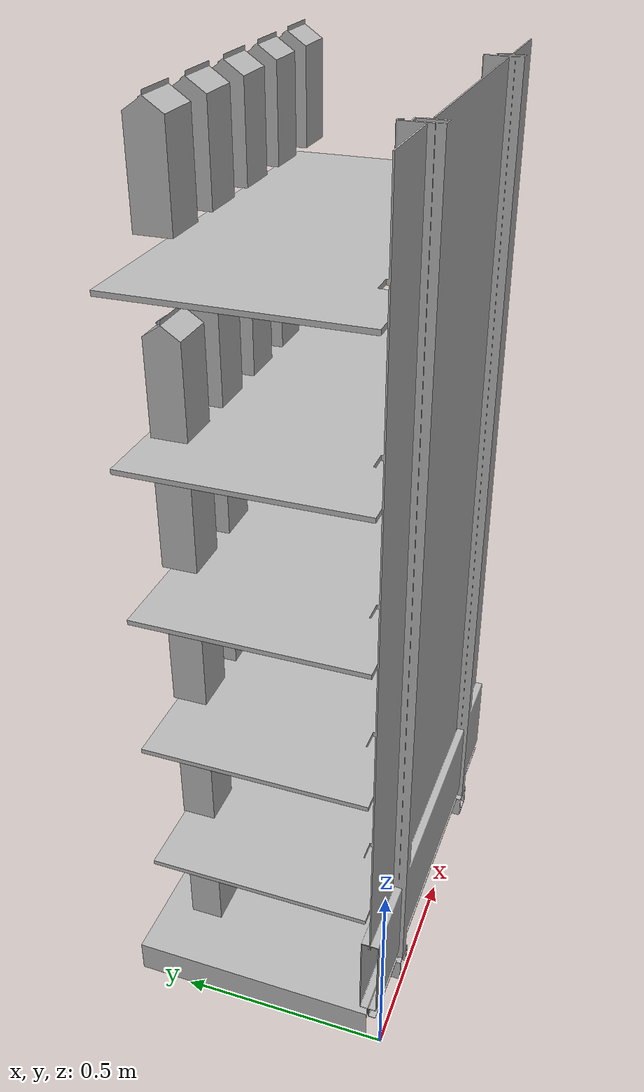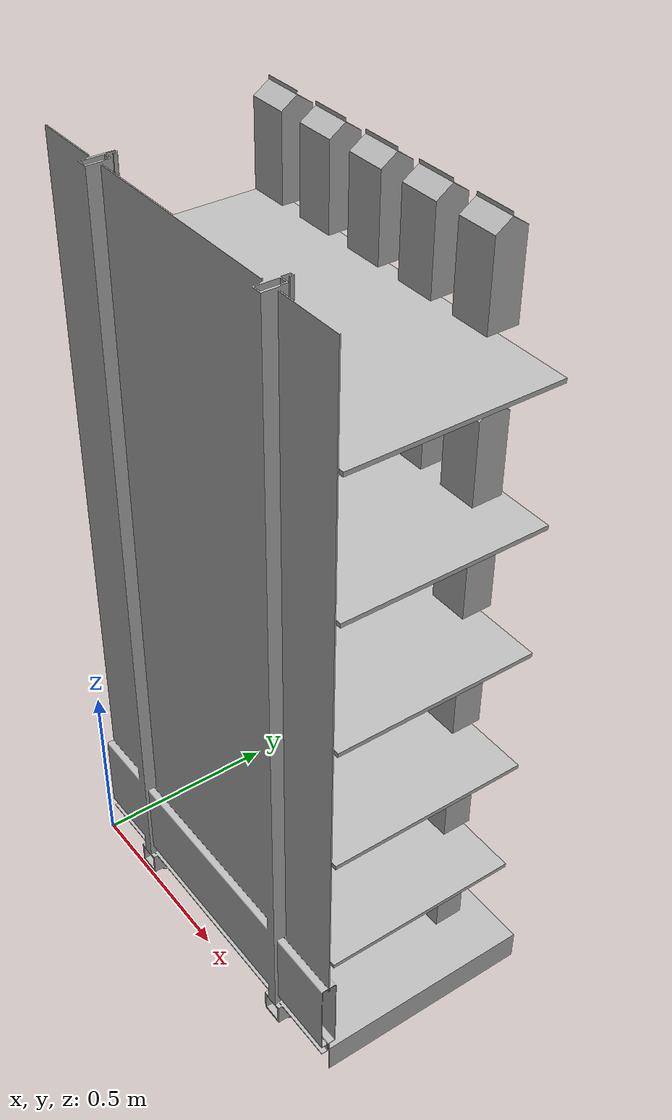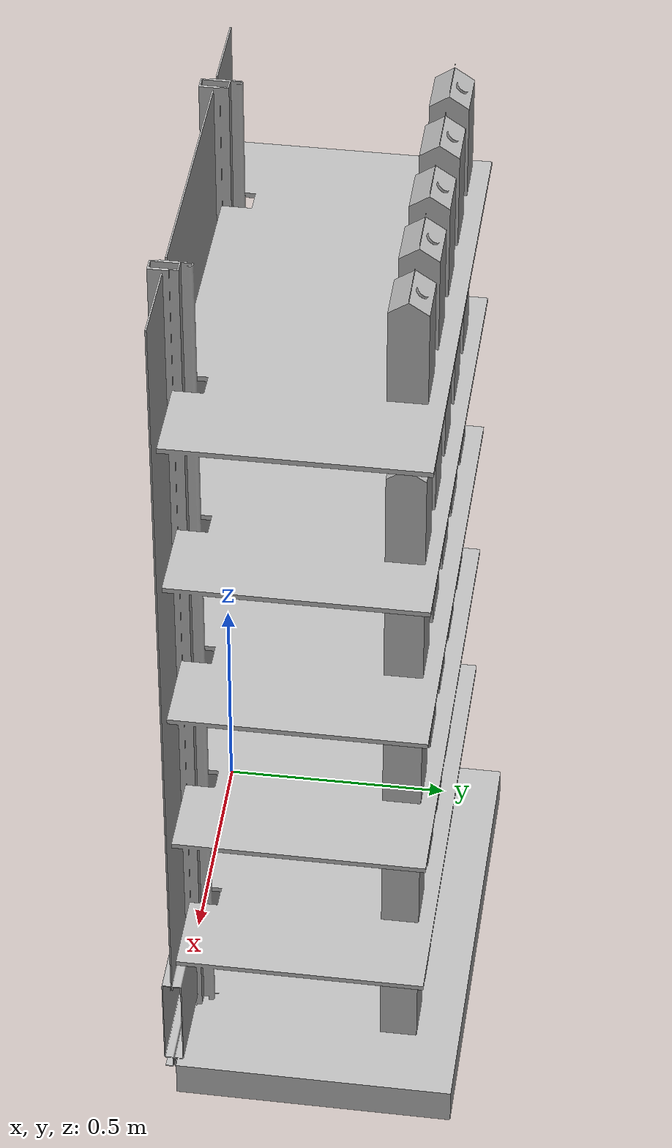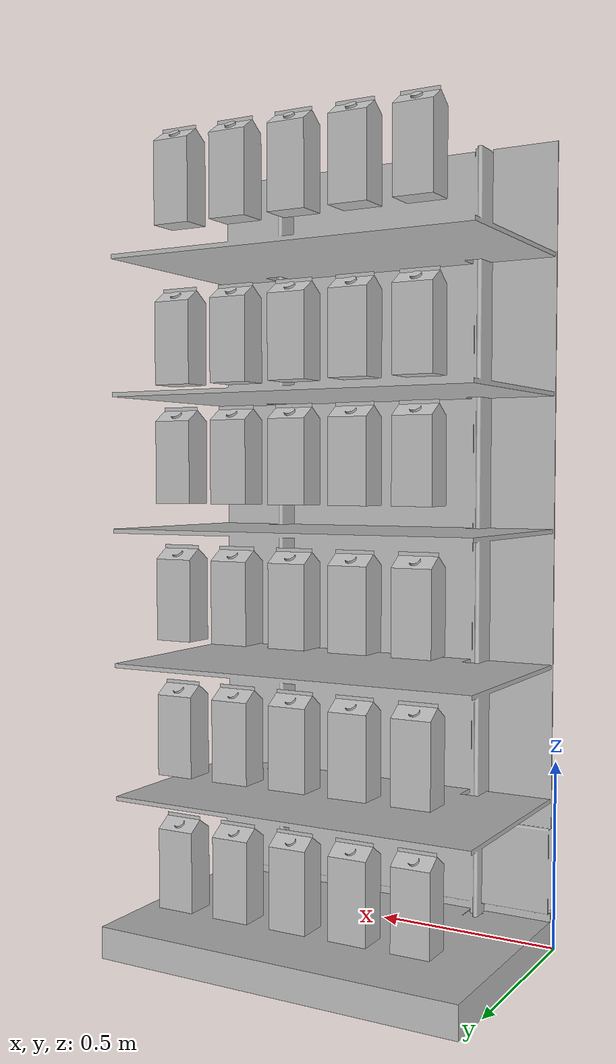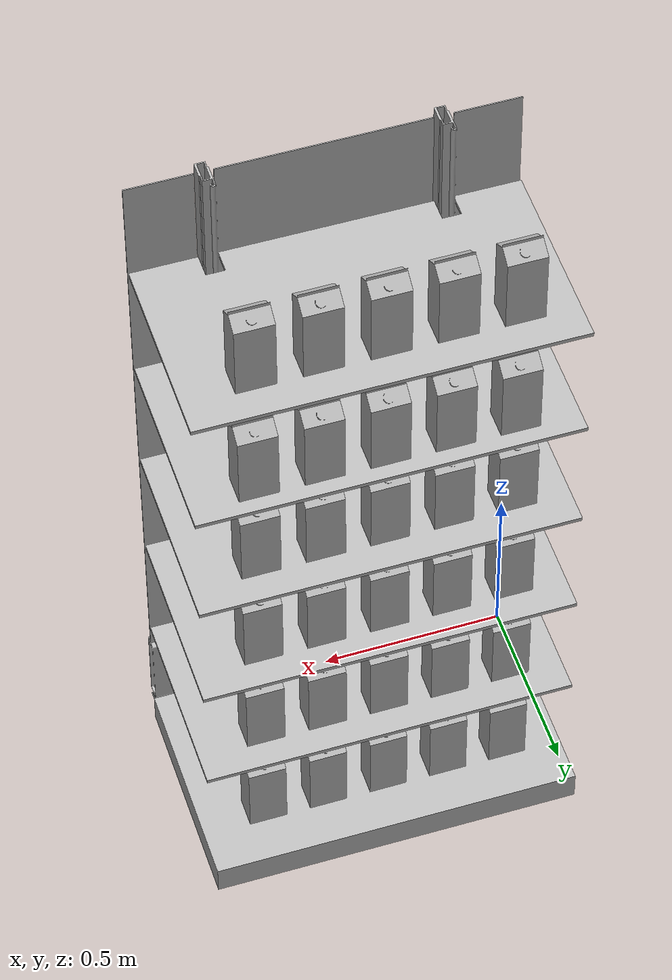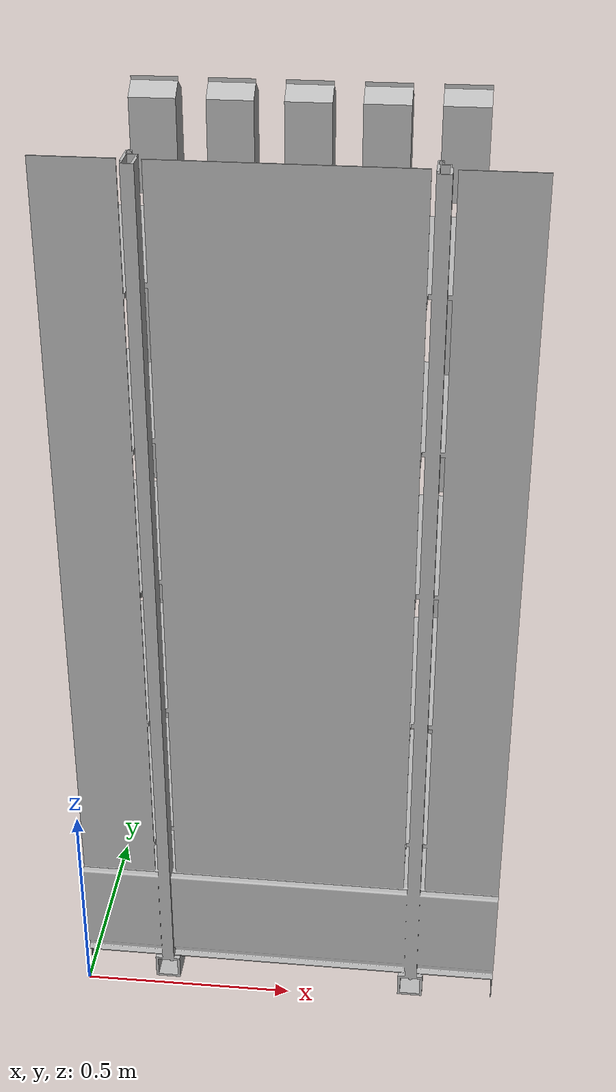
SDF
<?xml version="1.0"?>
<sdf version='1.6'>
  <model name="AH_shelf_filled_melk">
    <static>1</static>
    <link name='link'>
      <inertial>
        <mass>1</mass>
        <inertia>
          <ixx>1</ixx>
          <ixy>0</ixy>
          <ixz>0</ixz>
          <iyy>1</iyy>
          <iyz>0</iyz>
          <izz>1</izz>
        </inertia>
      </inertial>
      <pose frame=''>-0 0 0 0 0 0</pose>

      <visual name='visual'>
        <pose frame=''>0 0 0 0 0 0</pose>
        <geometry>
          <mesh>
            <uri>model://AH_shelf/AH_shelf.dae</uri>
            <scale>1 1 1</scale>
          </mesh>
        </geometry>
        <transparency>0</transparency>
        <cast_shadows>1</cast_shadows>
      </visual>

      <collision name='collision'>
        <laser_retro>0</laser_retro>
        <max_contacts>10</max_contacts>
        <pose frame=''>0 0 0 0 -0 0</pose>
        <geometry>
          <mesh>
            <uri>model://AH_shelf/AH_shelf.dae</uri>
            <scale>1 1 1</scale>
          </mesh>
        </geometry>
        <surface>
          <friction>
            <ode>
              <mu>1</mu>
              <mu2>1</mu2>
              <fdir1>0 0 0</fdir1>
              <slip1>0</slip1>
              <slip2>0</slip2>
            </ode>
            <torsional>
              <coefficient>1</coefficient>
              <patch_radius>0</patch_radius>
              <surface_radius>0</surface_radius>
              <use_patch_radius>1</use_patch_radius>
              <ode>
                <slip>0</slip>
              </ode>
            </torsional>
          </friction>
          <bounce>
            <restitution_coefficient>0</restitution_coefficient>
            <threshold>1e+06</threshold>
          </bounce>
          <contact>
            <collide_without_contact>0</collide_without_contact>
            <collide_without_contact_bitmask>1</collide_without_contact_bitmask>
            <collide_bitmask>1</collide_bitmask>
            <ode>
              <soft_cfm>0</soft_cfm>
              <soft_erp>0.2</soft_erp>
              <kp>1e+13</kp>
              <kd>1</kd>
              <max_vel>0.01</max_vel>
              <min_depth>0</min_depth>
            </ode>
            <bullet>
              <split_impulse>1</split_impulse>
              <split_impulse_penetration_threshold>-0.01</split_impulse_penetration_threshold>
              <soft_cfm>0</soft_cfm>
              <soft_erp>0.2</soft_erp>
              <kp>1e+13</kp>
              <kd>1</kd>
            </bullet>
          </contact>
        </surface>
      </collision>
    </link>

    <model name="board0">
      <pose>0 0.5 2.0 0 0 0</pose>

      <include>
        <uri>model://AH_melk_tag36_11_00200</uri>
        <pose>0.16666666666666666 0 0 0 0 1.57</pose>
      </include>

      <include>
        <uri>model://AH_melk_tag36_11_00201</uri>
        <pose>0.3333333333333333 0 0 0 0 1.57</pose>
      </include>

      <include>
        <uri>model://AH_melk_tag36_11_00202</uri>
        <pose>0.5 0 0 0 0 1.57</pose>
      </include>

      <include>
        <uri>model://AH_melk_tag36_11_00203</uri>
        <pose>0.6666666666666666 0 0 0 0 1.57</pose>
      </include>

      <include>
        <uri>model://AH_melk_tag36_11_00204</uri>
        <pose>0.8333333333333333 0 0 0 0 1.57</pose>
      </include>

    </model>

    <model name="board1">
      <pose>0 0.5 1.6 0 0 0</pose>

      <include>
        <uri>model://AH_melk_tag36_11_00205</uri>
        <pose>0.16666666666666666 0 0 0 0 1.57</pose>
      </include>

      <include>
        <uri>model://AH_melk_tag36_11_00206</uri>
        <pose>0.3333333333333333 0 0 0 0 1.57</pose>
      </include>

      <include>
        <uri>model://AH_melk_tag36_11_00207</uri>
        <pose>0.5 0 0 0 0 1.57</pose>
      </include>

      <include>
        <uri>model://AH_melk_tag36_11_00208</uri>
        <pose>0.6666666666666666 0 0 0 0 1.57</pose>
      </include>

      <include>
        <uri>model://AH_melk_tag36_11_00209</uri>
        <pose>0.8333333333333333 0 0 0 0 1.57</pose>
      </include>

    </model>

    <model name="board2">
      <pose>0 0.5 1.3 0 0 0</pose>

      <include>
        <uri>model://AH_melk_tag36_11_00210</uri>
        <pose>0.16666666666666666 0 0 0 0 1.57</pose>
      </include>

      <include>
        <uri>model://AH_melk_tag36_11_00211</uri>
        <pose>0.3333333333333333 0 0 0 0 1.57</pose>
      </include>

      <include>
        <uri>model://AH_melk_tag36_11_00212</uri>
        <pose>0.5 0 0 0 0 1.57</pose>
      </include>

      <include>
        <uri>model://AH_melk_tag36_11_00213</uri>
        <pose>0.6666666666666666 0 0 0 0 1.57</pose>
      </include>

      <include>
        <uri>model://AH_melk_tag36_11_00214</uri>
        <pose>0.8333333333333333 0 0 0 0 1.57</pose>
      </include>

    </model>

    <model name="board3">
      <pose>0 0.5 0.95 0 0 0</pose>

      <include>
        <uri>model://AH_melk_tag36_11_00215</uri>
        <pose>0.16666666666666666 0 0 0 0 1.57</pose>
      </include>

      <include>
        <uri>model://AH_melk_tag36_11_00216</uri>
        <pose>0.3333333333333333 0 0 0 0 1.57</pose>
      </include>

      <include>
        <uri>model://AH_melk_tag36_11_00217</uri>
        <pose>0.5 0 0 0 0 1.57</pose>
      </include>

      <include>
        <uri>model://AH_melk_tag36_11_00218</uri>
        <pose>0.6666666666666666 0 0 0 0 1.57</pose>
      </include>

      <include>
        <uri>model://AH_melk_tag36_11_00219</uri>
        <pose>0.8333333333333333 0 0 0 0 1.57</pose>
      </include>

    </model>

    <model name="board4">
      <pose>0 0.5 0.60 0 0 0</pose>

      <include>
        <uri>model://AH_melk_tag36_11_00220</uri>
        <pose>0.16666666666666666 0 0 0 0 1.57</pose>
      </include>

      <include>
        <uri>model://AH_melk_tag36_11_00221</uri>
        <pose>0.3333333333333333 0 0 0 0 1.57</pose>
      </include>

      <include>
        <uri>model://AH_melk_tag36_11_00222</uri>
        <pose>0.5 0 0 0 0 1.57</pose>
      </include>

      <include>
        <uri>model://AH_melk_tag36_11_00223</uri>
        <pose>0.6666666666666666 0 0 0 0 1.57</pose>
      </include>

      <include>
        <uri>model://AH_melk_tag36_11_00224</uri>
        <pose>0.8333333333333333 0 0 0 0 1.57</pose>
      </include>

    </model>

    <model name="board5">
      <pose>0 0.5 0.25 0 0 0</pose>

      <include>
        <uri>model://AH_melk_tag36_11_00225</uri>
        <pose>0.16666666666666666 0 0 0 0 1.57</pose>
      </include>

      <include>
        <uri>model://AH_melk_tag36_11_00226</uri>
        <pose>0.3333333333333333 0 0 0 0 1.57</pose>
      </include>

      <include>
        <uri>model://AH_melk_tag36_11_00227</uri>
        <pose>0.5 0 0 0 0 1.57</pose>
      </include>

      <include>
        <uri>model://AH_melk_tag36_11_00228</uri>
        <pose>0.6666666666666666 0 0 0 0 1.57</pose>
      </include>

      <include>
        <uri>model://AH_melk_tag36_11_00229</uri>
        <pose>0.8333333333333333 0 0 0 0 1.57</pose>
      </include>

    </model>

  </model>
</sdf>

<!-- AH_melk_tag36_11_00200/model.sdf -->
<sdf version='1.6'>
  <model name='AH_melk_tag36_11_00200'>
    <static>0</static>
    <link name='link_0'>

      <inertial>
        <mass>0.1</mass>
        <inertia>
          <ixx>1.4e-03</ixx>
          <ixy>0</ixy>
          <ixz>0</ixz>
          <iyy>1.4e-03</iyy>
          <iyz>0</iyz>
          <izz>2.8e-03</izz>
        </inertia>
      </inertial>

      <pose frame=''>-0 0 0 0 -0 0</pose>

      <visual name='visual'>
        <pose frame=''>0 0 0 0 -0 0</pose>
        <geometry>
          <mesh>
            <uri>model://AH_melk/AH_melk_tag36_11_00200/AH_melk_tag36_11_00200.dae</uri>
            <scale>1 1 1</scale>
          </mesh>
        </geometry>
        <transparency>0</transparency>
        <cast_shadows>1</cast_shadows>
      </visual>

      <collision name='collision'>
        <laser_retro>0</laser_retro>
        <max_contacts>10</max_contacts>
        <pose frame=''>0 0 0 0 -0 0</pose>
        <geometry>
          <mesh>
            <uri>model://AH_melk/AH_melk_tag36_11_00200/AH_melk_tag36_11_00200.dae</uri>
            <scale>1 1 1</scale>
          </mesh>
        </geometry>
        <surface>
          <friction>
            <ode>
              <mu>1</mu>
              <mu2>1</mu2>
              <fdir1>0 0 0</fdir1>
              <slip1>0</slip1>
              <slip2>0</slip2>
            </ode>
            <torsional>
              <coefficient>1</coefficient>
              <patch_radius>0</patch_radius>
              <surface_radius>0</surface_radius>
              <use_patch_radius>1</use_patch_radius>
              <ode>
                <slip>0</slip>
              </ode>
            </torsional>
          </friction>
          <bounce>
            <restitution_coefficient>0</restitution_coefficient>
            <threshold>1e+06</threshold>
          </bounce>
          <contact>
            <collide_without_contact>0</collide_without_contact>
            <collide_without_contact_bitmask>1</collide_without_contact_bitmask>
            <collide_bitmask>1</collide_bitmask>
            <ode>
              <soft_cfm>0</soft_cfm>
              <soft_erp>0.2</soft_erp>
              <kp>1e+13</kp>
              <kd>1</kd>
              <max_vel>0.01</max_vel>
              <min_depth>0</min_depth>
            </ode>
            <bullet>
              <split_impulse>1</split_impulse>
              <split_impulse_penetration_threshold>-0.01</split_impulse_penetration_threshold>
              <soft_cfm>0</soft_cfm>
              <soft_erp>0.2</soft_erp>
              <kp>1e+13</kp>
              <kd>1</kd>
            </bullet>
          </contact>
        </surface>
      </collision>

    </link>
  </model>
</sdf>

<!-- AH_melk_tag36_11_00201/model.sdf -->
<sdf version='1.6'>
  <model name='AH_melk_tag36_11_00201'>
    <static>0</static>
    <link name='link_0'>

      <inertial>
        <mass>0.1</mass>
        <inertia>
          <ixx>1.4e-03</ixx>
          <ixy>0</ixy>
          <ixz>0</ixz>
          <iyy>1.4e-03</iyy>
          <iyz>0</iyz>
          <izz>2.8e-03</izz>
        </inertia>
      </inertial>

      <pose frame=''>-0 0 0 0 -0 0</pose>

      <visual name='visual'>
        <pose frame=''>0 0 0 0 -0 0</pose>
        <geometry>
          <mesh>
            <uri>model://AH_melk/AH_melk_tag36_11_00201/AH_melk_tag36_11_00201.dae</uri>
            <scale>1 1 1</scale>
          </mesh>
        </geometry>
        <transparency>0</transparency>
        <cast_shadows>1</cast_shadows>
      </visual>

      <collision name='collision'>
        <laser_retro>0</laser_retro>
        <max_contacts>10</max_contacts>
        <pose frame=''>0 0 0 0 -0 0</pose>
        <geometry>
          <mesh>
            <uri>model://AH_melk/AH_melk_tag36_11_00201/AH_melk_tag36_11_00201.dae</uri>
            <scale>1 1 1</scale>
          </mesh>
        </geometry>
        <surface>
          <friction>
            <ode>
              <mu>1</mu>
              <mu2>1</mu2>
              <fdir1>0 0 0</fdir1>
              <slip1>0</slip1>
              <slip2>0</slip2>
            </ode>
            <torsional>
              <coefficient>1</coefficient>
              <patch_radius>0</patch_radius>
              <surface_radius>0</surface_radius>
              <use_patch_radius>1</use_patch_radius>
              <ode>
                <slip>0</slip>
              </ode>
            </torsional>
          </friction>
          <bounce>
            <restitution_coefficient>0</restitution_coefficient>
            <threshold>1e+06</threshold>
          </bounce>
          <contact>
            <collide_without_contact>0</collide_without_contact>
            <collide_without_contact_bitmask>1</collide_without_contact_bitmask>
            <collide_bitmask>1</collide_bitmask>
            <ode>
              <soft_cfm>0</soft_cfm>
              <soft_erp>0.2</soft_erp>
              <kp>1e+13</kp>
              <kd>1</kd>
              <max_vel>0.01</max_vel>
              <min_depth>0</min_depth>
            </ode>
            <bullet>
              <split_impulse>1</split_impulse>
              <split_impulse_penetration_threshold>-0.01</split_impulse_penetration_threshold>
              <soft_cfm>0</soft_cfm>
              <soft_erp>0.2</soft_erp>
              <kp>1e+13</kp>
              <kd>1</kd>
            </bullet>
          </contact>
        </surface>
      </collision>

    </link>
  </model>
</sdf>

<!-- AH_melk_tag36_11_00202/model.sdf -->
<sdf version='1.6'>
  <model name='AH_melk_tag36_11_00202'>
    <static>0</static>
    <link name='link_0'>

      <inertial>
        <mass>0.1</mass>
        <inertia>
          <ixx>1.4e-03</ixx>
          <ixy>0</ixy>
          <ixz>0</ixz>
          <iyy>1.4e-03</iyy>
          <iyz>0</iyz>
          <izz>2.8e-03</izz>
        </inertia>
      </inertial>

      <pose frame=''>-0 0 0 0 -0 0</pose>

      <visual name='visual'>
        <pose frame=''>0 0 0 0 -0 0</pose>
        <geometry>
          <mesh>
            <uri>model://AH_melk/AH_melk_tag36_11_00202/AH_melk_tag36_11_00202.dae</uri>
            <scale>1 1 1</scale>
          </mesh>
        </geometry>
        <transparency>0</transparency>
        <cast_shadows>1</cast_shadows>
      </visual>

      <collision name='collision'>
        <laser_retro>0</laser_retro>
        <max_contacts>10</max_contacts>
        <pose frame=''>0 0 0 0 -0 0</pose>
        <geometry>
          <mesh>
            <uri>model://AH_melk/AH_melk_tag36_11_00202/AH_melk_tag36_11_00202.dae</uri>
            <scale>1 1 1</scale>
          </mesh>
        </geometry>
        <surface>
          <friction>
            <ode>
              <mu>1</mu>
              <mu2>1</mu2>
              <fdir1>0 0 0</fdir1>
              <slip1>0</slip1>
              <slip2>0</slip2>
            </ode>
            <torsional>
              <coefficient>1</coefficient>
              <patch_radius>0</patch_radius>
              <surface_radius>0</surface_radius>
              <use_patch_radius>1</use_patch_radius>
              <ode>
                <slip>0</slip>
              </ode>
            </torsional>
          </friction>
          <bounce>
            <restitution_coefficient>0</restitution_coefficient>
            <threshold>1e+06</threshold>
          </bounce>
          <contact>
            <collide_without_contact>0</collide_without_contact>
            <collide_without_contact_bitmask>1</collide_without_contact_bitmask>
            <collide_bitmask>1</collide_bitmask>
            <ode>
              <soft_cfm>0</soft_cfm>
              <soft_erp>0.2</soft_erp>
              <kp>1e+13</kp>
              <kd>1</kd>
              <max_vel>0.01</max_vel>
              <min_depth>0</min_depth>
            </ode>
            <bullet>
              <split_impulse>1</split_impulse>
              <split_impulse_penetration_threshold>-0.01</split_impulse_penetration_threshold>
              <soft_cfm>0</soft_cfm>
              <soft_erp>0.2</soft_erp>
              <kp>1e+13</kp>
              <kd>1</kd>
            </bullet>
          </contact>
        </surface>
      </collision>

    </link>
  </model>
</sdf>

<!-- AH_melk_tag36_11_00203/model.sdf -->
<sdf version='1.6'>
  <model name='AH_melk_tag36_11_00203'>
    <static>0</static>
    <link name='link_0'>

      <inertial>
        <mass>0.1</mass>
        <inertia>
          <ixx>1.4e-03</ixx>
          <ixy>0</ixy>
          <ixz>0</ixz>
          <iyy>1.4e-03</iyy>
          <iyz>0</iyz>
          <izz>2.8e-03</izz>
        </inertia>
      </inertial>

      <pose frame=''>-0 0 0 0 -0 0</pose>

      <visual name='visual'>
        <pose frame=''>0 0 0 0 -0 0</pose>
        <geometry>
          <mesh>
            <uri>model://AH_melk/AH_melk_tag36_11_00203/AH_melk_tag36_11_00203.dae</uri>
            <scale>1 1 1</scale>
          </mesh>
        </geometry>
        <transparency>0</transparency>
        <cast_shadows>1</cast_shadows>
      </visual>

      <collision name='collision'>
        <laser_retro>0</laser_retro>
        <max_contacts>10</max_contacts>
        <pose frame=''>0 0 0 0 -0 0</pose>
        <geometry>
          <mesh>
            <uri>model://AH_melk/AH_melk_tag36_11_00203/AH_melk_tag36_11_00203.dae</uri>
            <scale>1 1 1</scale>
          </mesh>
        </geometry>
        <surface>
          <friction>
            <ode>
              <mu>1</mu>
              <mu2>1</mu2>
              <fdir1>0 0 0</fdir1>
              <slip1>0</slip1>
              <slip2>0</slip2>
            </ode>
            <torsional>
              <coefficient>1</coefficient>
              <patch_radius>0</patch_radius>
              <surface_radius>0</surface_radius>
              <use_patch_radius>1</use_patch_radius>
              <ode>
                <slip>0</slip>
              </ode>
            </torsional>
          </friction>
          <bounce>
            <restitution_coefficient>0</restitution_coefficient>
            <threshold>1e+06</threshold>
          </bounce>
          <contact>
            <collide_without_contact>0</collide_without_contact>
            <collide_without_contact_bitmask>1</collide_without_contact_bitmask>
            <collide_bitmask>1</collide_bitmask>
            <ode>
              <soft_cfm>0</soft_cfm>
              <soft_erp>0.2</soft_erp>
              <kp>1e+13</kp>
              <kd>1</kd>
              <max_vel>0.01</max_vel>
              <min_depth>0</min_depth>
            </ode>
            <bullet>
              <split_impulse>1</split_impulse>
              <split_impulse_penetration_threshold>-0.01</split_impulse_penetration_threshold>
              <soft_cfm>0</soft_cfm>
              <soft_erp>0.2</soft_erp>
              <kp>1e+13</kp>
              <kd>1</kd>
            </bullet>
          </contact>
        </surface>
      </collision>

    </link>
  </model>
</sdf>

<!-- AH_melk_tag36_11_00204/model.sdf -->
<sdf version='1.6'>
  <model name='AH_melk_tag36_11_00204'>
    <static>0</static>
    <link name='link_0'>

      <inertial>
        <mass>0.1</mass>
        <inertia>
          <ixx>1.4e-03</ixx>
          <ixy>0</ixy>
          <ixz>0</ixz>
          <iyy>1.4e-03</iyy>
          <iyz>0</iyz>
          <izz>2.8e-03</izz>
        </inertia>
      </inertial>

      <pose frame=''>-0 0 0 0 -0 0</pose>

      <visual name='visual'>
        <pose frame=''>0 0 0 0 -0 0</pose>
        <geometry>
          <mesh>
            <uri>model://AH_melk/AH_melk_tag36_11_00204/AH_melk_tag36_11_00204.dae</uri>
            <scale>1 1 1</scale>
          </mesh>
        </geometry>
        <transparency>0</transparency>
        <cast_shadows>1</cast_shadows>
      </visual>

      <collision name='collision'>
        <laser_retro>0</laser_retro>
        <max_contacts>10</max_contacts>
        <pose frame=''>0 0 0 0 -0 0</pose>
        <geometry>
          <mesh>
            <uri>model://AH_melk/AH_melk_tag36_11_00204/AH_melk_tag36_11_00204.dae</uri>
            <scale>1 1 1</scale>
          </mesh>
        </geometry>
        <surface>
          <friction>
            <ode>
              <mu>1</mu>
              <mu2>1</mu2>
              <fdir1>0 0 0</fdir1>
              <slip1>0</slip1>
              <slip2>0</slip2>
            </ode>
            <torsional>
              <coefficient>1</coefficient>
              <patch_radius>0</patch_radius>
              <surface_radius>0</surface_radius>
              <use_patch_radius>1</use_patch_radius>
              <ode>
                <slip>0</slip>
              </ode>
            </torsional>
          </friction>
          <bounce>
            <restitution_coefficient>0</restitution_coefficient>
            <threshold>1e+06</threshold>
          </bounce>
          <contact>
            <collide_without_contact>0</collide_without_contact>
            <collide_without_contact_bitmask>1</collide_without_contact_bitmask>
            <collide_bitmask>1</collide_bitmask>
            <ode>
              <soft_cfm>0</soft_cfm>
              <soft_erp>0.2</soft_erp>
              <kp>1e+13</kp>
              <kd>1</kd>
              <max_vel>0.01</max_vel>
              <min_depth>0</min_depth>
            </ode>
            <bullet>
              <split_impulse>1</split_impulse>
              <split_impulse_penetration_threshold>-0.01</split_impulse_penetration_threshold>
              <soft_cfm>0</soft_cfm>
              <soft_erp>0.2</soft_erp>
              <kp>1e+13</kp>
              <kd>1</kd>
            </bullet>
          </contact>
        </surface>
      </collision>

    </link>
  </model>
</sdf>

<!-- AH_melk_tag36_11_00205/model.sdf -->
<sdf version='1.6'>
  <model name='AH_melk_tag36_11_00205'>
    <static>0</static>
    <link name='link_0'>

      <inertial>
        <mass>0.1</mass>
        <inertia>
          <ixx>1.4e-03</ixx>
          <ixy>0</ixy>
          <ixz>0</ixz>
          <iyy>1.4e-03</iyy>
          <iyz>0</iyz>
          <izz>2.8e-03</izz>
        </inertia>
      </inertial>

      <pose frame=''>-0 0 0 0 -0 0</pose>

      <visual name='visual'>
        <pose frame=''>0 0 0 0 -0 0</pose>
        <geometry>
          <mesh>
            <uri>model://AH_melk/AH_melk_tag36_11_00205/AH_melk_tag36_11_00205.dae</uri>
            <scale>1 1 1</scale>
          </mesh>
        </geometry>
        <transparency>0</transparency>
        <cast_shadows>1</cast_shadows>
      </visual>

      <collision name='collision'>
        <laser_retro>0</laser_retro>
        <max_contacts>10</max_contacts>
        <pose frame=''>0 0 0 0 -0 0</pose>
        <geometry>
          <mesh>
            <uri>model://AH_melk/AH_melk_tag36_11_00205/AH_melk_tag36_11_00205.dae</uri>
            <scale>1 1 1</scale>
          </mesh>
        </geometry>
        <surface>
          <friction>
            <ode>
              <mu>1</mu>
              <mu2>1</mu2>
              <fdir1>0 0 0</fdir1>
              <slip1>0</slip1>
              <slip2>0</slip2>
            </ode>
            <torsional>
              <coefficient>1</coefficient>
              <patch_radius>0</patch_radius>
              <surface_radius>0</surface_radius>
              <use_patch_radius>1</use_patch_radius>
              <ode>
                <slip>0</slip>
              </ode>
            </torsional>
          </friction>
          <bounce>
            <restitution_coefficient>0</restitution_coefficient>
            <threshold>1e+06</threshold>
          </bounce>
          <contact>
            <collide_without_contact>0</collide_without_contact>
            <collide_without_contact_bitmask>1</collide_without_contact_bitmask>
            <collide_bitmask>1</collide_bitmask>
            <ode>
              <soft_cfm>0</soft_cfm>
              <soft_erp>0.2</soft_erp>
              <kp>1e+13</kp>
              <kd>1</kd>
              <max_vel>0.01</max_vel>
              <min_depth>0</min_depth>
            </ode>
            <bullet>
              <split_impulse>1</split_impulse>
              <split_impulse_penetration_threshold>-0.01</split_impulse_penetration_threshold>
              <soft_cfm>0</soft_cfm>
              <soft_erp>0.2</soft_erp>
              <kp>1e+13</kp>
              <kd>1</kd>
            </bullet>
          </contact>
        </surface>
      </collision>

    </link>
  </model>
</sdf>

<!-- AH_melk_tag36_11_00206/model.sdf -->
<sdf version='1.6'>
  <model name='AH_melk_tag36_11_00206'>
    <static>0</static>
    <link name='link_0'>

      <inertial>
        <mass>0.1</mass>
        <inertia>
          <ixx>1.4e-03</ixx>
          <ixy>0</ixy>
          <ixz>0</ixz>
          <iyy>1.4e-03</iyy>
          <iyz>0</iyz>
          <izz>2.8e-03</izz>
        </inertia>
      </inertial>

      <pose frame=''>-0 0 0 0 -0 0</pose>

      <visual name='visual'>
        <pose frame=''>0 0 0 0 -0 0</pose>
        <geometry>
          <mesh>
            <uri>model://AH_melk/AH_melk_tag36_11_00206/AH_melk_tag36_11_00206.dae</uri>
            <scale>1 1 1</scale>
          </mesh>
        </geometry>
        <transparency>0</transparency>
        <cast_shadows>1</cast_shadows>
      </visual>

      <collision name='collision'>
        <laser_retro>0</laser_retro>
        <max_contacts>10</max_contacts>
        <pose frame=''>0 0 0 0 -0 0</pose>
        <geometry>
          <mesh>
            <uri>model://AH_melk/AH_melk_tag36_11_00206/AH_melk_tag36_11_00206.dae</uri>
            <scale>1 1 1</scale>
          </mesh>
        </geometry>
        <surface>
          <friction>
            <ode>
              <mu>1</mu>
              <mu2>1</mu2>
              <fdir1>0 0 0</fdir1>
              <slip1>0</slip1>
              <slip2>0</slip2>
            </ode>
            <torsional>
              <coefficient>1</coefficient>
              <patch_radius>0</patch_radius>
              <surface_radius>0</surface_radius>
              <use_patch_radius>1</use_patch_radius>
              <ode>
                <slip>0</slip>
              </ode>
            </torsional>
          </friction>
          <bounce>
            <restitution_coefficient>0</restitution_coefficient>
            <threshold>1e+06</threshold>
          </bounce>
          <contact>
            <collide_without_contact>0</collide_without_contact>
            <collide_without_contact_bitmask>1</collide_without_contact_bitmask>
            <collide_bitmask>1</collide_bitmask>
            <ode>
              <soft_cfm>0</soft_cfm>
              <soft_erp>0.2</soft_erp>
              <kp>1e+13</kp>
              <kd>1</kd>
              <max_vel>0.01</max_vel>
              <min_depth>0</min_depth>
            </ode>
            <bullet>
              <split_impulse>1</split_impulse>
              <split_impulse_penetration_threshold>-0.01</split_impulse_penetration_threshold>
              <soft_cfm>0</soft_cfm>
              <soft_erp>0.2</soft_erp>
              <kp>1e+13</kp>
              <kd>1</kd>
            </bullet>
          </contact>
        </surface>
      </collision>

    </link>
  </model>
</sdf>

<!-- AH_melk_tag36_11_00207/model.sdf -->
<sdf version='1.6'>
  <model name='AH_melk_tag36_11_00207'>
    <static>0</static>
    <link name='link_0'>

      <inertial>
        <mass>0.1</mass>
        <inertia>
          <ixx>1.4e-03</ixx>
          <ixy>0</ixy>
          <ixz>0</ixz>
          <iyy>1.4e-03</iyy>
          <iyz>0</iyz>
          <izz>2.8e-03</izz>
        </inertia>
      </inertial>

      <pose frame=''>-0 0 0 0 -0 0</pose>

      <visual name='visual'>
        <pose frame=''>0 0 0 0 -0 0</pose>
        <geometry>
          <mesh>
            <uri>model://AH_melk/AH_melk_tag36_11_00207/AH_melk_tag36_11_00207.dae</uri>
            <scale>1 1 1</scale>
          </mesh>
        </geometry>
        <transparency>0</transparency>
        <cast_shadows>1</cast_shadows>
      </visual>

      <collision name='collision'>
        <laser_retro>0</laser_retro>
        <max_contacts>10</max_contacts>
        <pose frame=''>0 0 0 0 -0 0</pose>
        <geometry>
          <mesh>
            <uri>model://AH_melk/AH_melk_tag36_11_00207/AH_melk_tag36_11_00207.dae</uri>
            <scale>1 1 1</scale>
          </mesh>
        </geometry>
        <surface>
          <friction>
            <ode>
              <mu>1</mu>
              <mu2>1</mu2>
              <fdir1>0 0 0</fdir1>
              <slip1>0</slip1>
              <slip2>0</slip2>
            </ode>
            <torsional>
              <coefficient>1</coefficient>
              <patch_radius>0</patch_radius>
              <surface_radius>0</surface_radius>
              <use_patch_radius>1</use_patch_radius>
              <ode>
                <slip>0</slip>
              </ode>
            </torsional>
          </friction>
          <bounce>
            <restitution_coefficient>0</restitution_coefficient>
            <threshold>1e+06</threshold>
          </bounce>
          <contact>
            <collide_without_contact>0</collide_without_contact>
            <collide_without_contact_bitmask>1</collide_without_contact_bitmask>
            <collide_bitmask>1</collide_bitmask>
            <ode>
              <soft_cfm>0</soft_cfm>
              <soft_erp>0.2</soft_erp>
              <kp>1e+13</kp>
              <kd>1</kd>
              <max_vel>0.01</max_vel>
              <min_depth>0</min_depth>
            </ode>
            <bullet>
              <split_impulse>1</split_impulse>
              <split_impulse_penetration_threshold>-0.01</split_impulse_penetration_threshold>
              <soft_cfm>0</soft_cfm>
              <soft_erp>0.2</soft_erp>
              <kp>1e+13</kp>
              <kd>1</kd>
            </bullet>
          </contact>
        </surface>
      </collision>

    </link>
  </model>
</sdf>

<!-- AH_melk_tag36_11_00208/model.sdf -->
<sdf version='1.6'>
  <model name='AH_melk_tag36_11_00208'>
    <static>0</static>
    <link name='link_0'>

      <inertial>
        <mass>0.1</mass>
        <inertia>
          <ixx>1.4e-03</ixx>
          <ixy>0</ixy>
          <ixz>0</ixz>
          <iyy>1.4e-03</iyy>
          <iyz>0</iyz>
          <izz>2.8e-03</izz>
        </inertia>
      </inertial>

      <pose frame=''>-0 0 0 0 -0 0</pose>

      <visual name='visual'>
        <pose frame=''>0 0 0 0 -0 0</pose>
        <geometry>
          <mesh>
            <uri>model://AH_melk/AH_melk_tag36_11_00208/AH_melk_tag36_11_00208.dae</uri>
            <scale>1 1 1</scale>
          </mesh>
        </geometry>
        <transparency>0</transparency>
        <cast_shadows>1</cast_shadows>
      </visual>

      <collision name='collision'>
        <laser_retro>0</laser_retro>
        <max_contacts>10</max_contacts>
        <pose frame=''>0 0 0 0 -0 0</pose>
        <geometry>
          <mesh>
            <uri>model://AH_melk/AH_melk_tag36_11_00208/AH_melk_tag36_11_00208.dae</uri>
            <scale>1 1 1</scale>
          </mesh>
        </geometry>
        <surface>
          <friction>
            <ode>
              <mu>1</mu>
              <mu2>1</mu2>
              <fdir1>0 0 0</fdir1>
              <slip1>0</slip1>
              <slip2>0</slip2>
            </ode>
            <torsional>
              <coefficient>1</coefficient>
              <patch_radius>0</patch_radius>
              <surface_radius>0</surface_radius>
              <use_patch_radius>1</use_patch_radius>
              <ode>
                <slip>0</slip>
              </ode>
            </torsional>
          </friction>
          <bounce>
            <restitution_coefficient>0</restitution_coefficient>
            <threshold>1e+06</threshold>
          </bounce>
          <contact>
            <collide_without_contact>0</collide_without_contact>
            <collide_without_contact_bitmask>1</collide_without_contact_bitmask>
            <collide_bitmask>1</collide_bitmask>
            <ode>
              <soft_cfm>0</soft_cfm>
              <soft_erp>0.2</soft_erp>
              <kp>1e+13</kp>
              <kd>1</kd>
              <max_vel>0.01</max_vel>
              <min_depth>0</min_depth>
            </ode>
            <bullet>
              <split_impulse>1</split_impulse>
              <split_impulse_penetration_threshold>-0.01</split_impulse_penetration_threshold>
              <soft_cfm>0</soft_cfm>
              <soft_erp>0.2</soft_erp>
              <kp>1e+13</kp>
              <kd>1</kd>
            </bullet>
          </contact>
        </surface>
      </collision>

    </link>
  </model>
</sdf>

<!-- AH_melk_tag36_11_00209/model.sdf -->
<sdf version='1.6'>
  <model name='AH_melk_tag36_11_00209'>
    <static>0</static>
    <link name='link_0'>

      <inertial>
        <mass>0.1</mass>
        <inertia>
          <ixx>1.4e-03</ixx>
          <ixy>0</ixy>
          <ixz>0</ixz>
          <iyy>1.4e-03</iyy>
          <iyz>0</iyz>
          <izz>2.8e-03</izz>
        </inertia>
      </inertial>

      <pose frame=''>-0 0 0 0 -0 0</pose>

      <visual name='visual'>
        <pose frame=''>0 0 0 0 -0 0</pose>
        <geometry>
          <mesh>
            <uri>model://AH_melk/AH_melk_tag36_11_00209/AH_melk_tag36_11_00209.dae</uri>
            <scale>1 1 1</scale>
          </mesh>
        </geometry>
        <transparency>0</transparency>
        <cast_shadows>1</cast_shadows>
      </visual>

      <collision name='collision'>
        <laser_retro>0</laser_retro>
        <max_contacts>10</max_contacts>
        <pose frame=''>0 0 0 0 -0 0</pose>
        <geometry>
          <mesh>
            <uri>model://AH_melk/AH_melk_tag36_11_00209/AH_melk_tag36_11_00209.dae</uri>
            <scale>1 1 1</scale>
          </mesh>
        </geometry>
        <surface>
          <friction>
            <ode>
              <mu>1</mu>
              <mu2>1</mu2>
              <fdir1>0 0 0</fdir1>
              <slip1>0</slip1>
              <slip2>0</slip2>
            </ode>
            <torsional>
              <coefficient>1</coefficient>
              <patch_radius>0</patch_radius>
              <surface_radius>0</surface_radius>
              <use_patch_radius>1</use_patch_radius>
              <ode>
                <slip>0</slip>
              </ode>
            </torsional>
          </friction>
          <bounce>
            <restitution_coefficient>0</restitution_coefficient>
            <threshold>1e+06</threshold>
          </bounce>
          <contact>
            <collide_without_contact>0</collide_without_contact>
            <collide_without_contact_bitmask>1</collide_without_contact_bitmask>
            <collide_bitmask>1</collide_bitmask>
            <ode>
              <soft_cfm>0</soft_cfm>
              <soft_erp>0.2</soft_erp>
              <kp>1e+13</kp>
              <kd>1</kd>
              <max_vel>0.01</max_vel>
              <min_depth>0</min_depth>
            </ode>
            <bullet>
              <split_impulse>1</split_impulse>
              <split_impulse_penetration_threshold>-0.01</split_impulse_penetration_threshold>
              <soft_cfm>0</soft_cfm>
              <soft_erp>0.2</soft_erp>
              <kp>1e+13</kp>
              <kd>1</kd>
            </bullet>
          </contact>
        </surface>
      </collision>

    </link>
  </model>
</sdf>

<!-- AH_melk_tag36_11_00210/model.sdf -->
<sdf version='1.6'>
  <model name='AH_melk_tag36_11_00210'>
    <static>0</static>
    <link name='link_0'>

      <inertial>
        <mass>0.1</mass>
        <inertia>
          <ixx>1.4e-03</ixx>
          <ixy>0</ixy>
          <ixz>0</ixz>
          <iyy>1.4e-03</iyy>
          <iyz>0</iyz>
          <izz>2.8e-03</izz>
        </inertia>
      </inertial>

      <pose frame=''>-0 0 0 0 -0 0</pose>

      <visual name='visual'>
        <pose frame=''>0 0 0 0 -0 0</pose>
        <geometry>
          <mesh>
            <uri>model://AH_melk/AH_melk_tag36_11_00210/AH_melk_tag36_11_00210.dae</uri>
            <scale>1 1 1</scale>
          </mesh>
        </geometry>
        <transparency>0</transparency>
        <cast_shadows>1</cast_shadows>
      </visual>

      <collision name='collision'>
        <laser_retro>0</laser_retro>
        <max_contacts>10</max_contacts>
        <pose frame=''>0 0 0 0 -0 0</pose>
        <geometry>
          <mesh>
            <uri>model://AH_melk/AH_melk_tag36_11_00210/AH_melk_tag36_11_00210.dae</uri>
            <scale>1 1 1</scale>
          </mesh>
        </geometry>
        <surface>
          <friction>
            <ode>
              <mu>1</mu>
              <mu2>1</mu2>
              <fdir1>0 0 0</fdir1>
              <slip1>0</slip1>
              <slip2>0</slip2>
            </ode>
            <torsional>
              <coefficient>1</coefficient>
              <patch_radius>0</patch_radius>
              <surface_radius>0</surface_radius>
              <use_patch_radius>1</use_patch_radius>
              <ode>
                <slip>0</slip>
              </ode>
            </torsional>
          </friction>
          <bounce>
            <restitution_coefficient>0</restitution_coefficient>
            <threshold>1e+06</threshold>
          </bounce>
          <contact>
            <collide_without_contact>0</collide_without_contact>
            <collide_without_contact_bitmask>1</collide_without_contact_bitmask>
            <collide_bitmask>1</collide_bitmask>
            <ode>
              <soft_cfm>0</soft_cfm>
              <soft_erp>0.2</soft_erp>
              <kp>1e+13</kp>
              <kd>1</kd>
              <max_vel>0.01</max_vel>
              <min_depth>0</min_depth>
            </ode>
            <bullet>
              <split_impulse>1</split_impulse>
              <split_impulse_penetration_threshold>-0.01</split_impulse_penetration_threshold>
              <soft_cfm>0</soft_cfm>
              <soft_erp>0.2</soft_erp>
              <kp>1e+13</kp>
              <kd>1</kd>
            </bullet>
          </contact>
        </surface>
      </collision>

    </link>
  </model>
</sdf>

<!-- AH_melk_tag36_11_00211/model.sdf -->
<sdf version='1.6'>
  <model name='AH_melk_tag36_11_00211'>
    <static>0</static>
    <link name='link_0'>

      <inertial>
        <mass>0.1</mass>
        <inertia>
          <ixx>1.4e-03</ixx>
          <ixy>0</ixy>
          <ixz>0</ixz>
          <iyy>1.4e-03</iyy>
          <iyz>0</iyz>
          <izz>2.8e-03</izz>
        </inertia>
      </inertial>

      <pose frame=''>-0 0 0 0 -0 0</pose>

      <visual name='visual'>
        <pose frame=''>0 0 0 0 -0 0</pose>
        <geometry>
          <mesh>
            <uri>model://AH_melk/AH_melk_tag36_11_00211/AH_melk_tag36_11_00211.dae</uri>
            <scale>1 1 1</scale>
          </mesh>
        </geometry>
        <transparency>0</transparency>
        <cast_shadows>1</cast_shadows>
      </visual>

      <collision name='collision'>
        <laser_retro>0</laser_retro>
        <max_contacts>10</max_contacts>
        <pose frame=''>0 0 0 0 -0 0</pose>
        <geometry>
          <mesh>
            <uri>model://AH_melk/AH_melk_tag36_11_00211/AH_melk_tag36_11_00211.dae</uri>
            <scale>1 1 1</scale>
          </mesh>
        </geometry>
        <surface>
          <friction>
            <ode>
              <mu>1</mu>
              <mu2>1</mu2>
              <fdir1>0 0 0</fdir1>
              <slip1>0</slip1>
              <slip2>0</slip2>
            </ode>
            <torsional>
              <coefficient>1</coefficient>
              <patch_radius>0</patch_radius>
              <surface_radius>0</surface_radius>
              <use_patch_radius>1</use_patch_radius>
              <ode>
                <slip>0</slip>
              </ode>
            </torsional>
          </friction>
          <bounce>
            <restitution_coefficient>0</restitution_coefficient>
            <threshold>1e+06</threshold>
          </bounce>
          <contact>
            <collide_without_contact>0</collide_without_contact>
            <collide_without_contact_bitmask>1</collide_without_contact_bitmask>
            <collide_bitmask>1</collide_bitmask>
            <ode>
              <soft_cfm>0</soft_cfm>
              <soft_erp>0.2</soft_erp>
              <kp>1e+13</kp>
              <kd>1</kd>
              <max_vel>0.01</max_vel>
              <min_depth>0</min_depth>
            </ode>
            <bullet>
              <split_impulse>1</split_impulse>
              <split_impulse_penetration_threshold>-0.01</split_impulse_penetration_threshold>
              <soft_cfm>0</soft_cfm>
              <soft_erp>0.2</soft_erp>
              <kp>1e+13</kp>
              <kd>1</kd>
            </bullet>
          </contact>
        </surface>
      </collision>

    </link>
  </model>
</sdf>

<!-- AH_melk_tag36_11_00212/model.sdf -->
<sdf version='1.6'>
  <model name='AH_melk_tag36_11_00212'>
    <static>0</static>
    <link name='link_0'>

      <inertial>
        <mass>0.1</mass>
        <inertia>
          <ixx>1.4e-03</ixx>
          <ixy>0</ixy>
          <ixz>0</ixz>
          <iyy>1.4e-03</iyy>
          <iyz>0</iyz>
          <izz>2.8e-03</izz>
        </inertia>
      </inertial>

      <pose frame=''>-0 0 0 0 -0 0</pose>

      <visual name='visual'>
        <pose frame=''>0 0 0 0 -0 0</pose>
        <geometry>
          <mesh>
            <uri>model://AH_melk/AH_melk_tag36_11_00212/AH_melk_tag36_11_00212.dae</uri>
            <scale>1 1 1</scale>
          </mesh>
        </geometry>
        <transparency>0</transparency>
        <cast_shadows>1</cast_shadows>
      </visual>

      <collision name='collision'>
        <laser_retro>0</laser_retro>
        <max_contacts>10</max_contacts>
        <pose frame=''>0 0 0 0 -0 0</pose>
        <geometry>
          <mesh>
            <uri>model://AH_melk/AH_melk_tag36_11_00212/AH_melk_tag36_11_00212.dae</uri>
            <scale>1 1 1</scale>
          </mesh>
        </geometry>
        <surface>
          <friction>
            <ode>
              <mu>1</mu>
              <mu2>1</mu2>
              <fdir1>0 0 0</fdir1>
              <slip1>0</slip1>
              <slip2>0</slip2>
            </ode>
            <torsional>
              <coefficient>1</coefficient>
              <patch_radius>0</patch_radius>
              <surface_radius>0</surface_radius>
              <use_patch_radius>1</use_patch_radius>
              <ode>
                <slip>0</slip>
              </ode>
            </torsional>
          </friction>
          <bounce>
            <restitution_coefficient>0</restitution_coefficient>
            <threshold>1e+06</threshold>
          </bounce>
          <contact>
            <collide_without_contact>0</collide_without_contact>
            <collide_without_contact_bitmask>1</collide_without_contact_bitmask>
            <collide_bitmask>1</collide_bitmask>
            <ode>
              <soft_cfm>0</soft_cfm>
              <soft_erp>0.2</soft_erp>
              <kp>1e+13</kp>
              <kd>1</kd>
              <max_vel>0.01</max_vel>
              <min_depth>0</min_depth>
            </ode>
            <bullet>
              <split_impulse>1</split_impulse>
              <split_impulse_penetration_threshold>-0.01</split_impulse_penetration_threshold>
              <soft_cfm>0</soft_cfm>
              <soft_erp>0.2</soft_erp>
              <kp>1e+13</kp>
              <kd>1</kd>
            </bullet>
          </contact>
        </surface>
      </collision>

    </link>
  </model>
</sdf>

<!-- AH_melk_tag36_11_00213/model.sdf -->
<sdf version='1.6'>
  <model name='AH_melk_tag36_11_00213'>
    <static>0</static>
    <link name='link_0'>

      <inertial>
        <mass>0.1</mass>
        <inertia>
          <ixx>1.4e-03</ixx>
          <ixy>0</ixy>
          <ixz>0</ixz>
          <iyy>1.4e-03</iyy>
          <iyz>0</iyz>
          <izz>2.8e-03</izz>
        </inertia>
      </inertial>

      <pose frame=''>-0 0 0 0 -0 0</pose>

      <visual name='visual'>
        <pose frame=''>0 0 0 0 -0 0</pose>
        <geometry>
          <mesh>
            <uri>model://AH_melk/AH_melk_tag36_11_00213/AH_melk_tag36_11_00213.dae</uri>
            <scale>1 1 1</scale>
          </mesh>
        </geometry>
        <transparency>0</transparency>
        <cast_shadows>1</cast_shadows>
      </visual>

      <collision name='collision'>
        <laser_retro>0</laser_retro>
        <max_contacts>10</max_contacts>
        <pose frame=''>0 0 0 0 -0 0</pose>
        <geometry>
          <mesh>
            <uri>model://AH_melk/AH_melk_tag36_11_00213/AH_melk_tag36_11_00213.dae</uri>
            <scale>1 1 1</scale>
          </mesh>
        </geometry>
        <surface>
          <friction>
            <ode>
              <mu>1</mu>
              <mu2>1</mu2>
              <fdir1>0 0 0</fdir1>
              <slip1>0</slip1>
              <slip2>0</slip2>
            </ode>
            <torsional>
              <coefficient>1</coefficient>
              <patch_radius>0</patch_radius>
              <surface_radius>0</surface_radius>
              <use_patch_radius>1</use_patch_radius>
              <ode>
                <slip>0</slip>
              </ode>
            </torsional>
          </friction>
          <bounce>
            <restitution_coefficient>0</restitution_coefficient>
            <threshold>1e+06</threshold>
          </bounce>
          <contact>
            <collide_without_contact>0</collide_without_contact>
            <collide_without_contact_bitmask>1</collide_without_contact_bitmask>
            <collide_bitmask>1</collide_bitmask>
            <ode>
              <soft_cfm>0</soft_cfm>
              <soft_erp>0.2</soft_erp>
              <kp>1e+13</kp>
              <kd>1</kd>
              <max_vel>0.01</max_vel>
              <min_depth>0</min_depth>
            </ode>
            <bullet>
              <split_impulse>1</split_impulse>
              <split_impulse_penetration_threshold>-0.01</split_impulse_penetration_threshold>
              <soft_cfm>0</soft_cfm>
              <soft_erp>0.2</soft_erp>
              <kp>1e+13</kp>
              <kd>1</kd>
            </bullet>
          </contact>
        </surface>
      </collision>

    </link>
  </model>
</sdf>

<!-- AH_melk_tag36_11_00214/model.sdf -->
<sdf version='1.6'>
  <model name='AH_melk_tag36_11_00214'>
    <static>0</static>
    <link name='link_0'>

      <inertial>
        <mass>0.1</mass>
        <inertia>
          <ixx>1.4e-03</ixx>
          <ixy>0</ixy>
          <ixz>0</ixz>
          <iyy>1.4e-03</iyy>
          <iyz>0</iyz>
          <izz>2.8e-03</izz>
        </inertia>
      </inertial>

      <pose frame=''>-0 0 0 0 -0 0</pose>

      <visual name='visual'>
        <pose frame=''>0 0 0 0 -0 0</pose>
        <geometry>
          <mesh>
            <uri>model://AH_melk/AH_melk_tag36_11_00214/AH_melk_tag36_11_00214.dae</uri>
            <scale>1 1 1</scale>
          </mesh>
        </geometry>
        <transparency>0</transparency>
        <cast_shadows>1</cast_shadows>
      </visual>

      <collision name='collision'>
        <laser_retro>0</laser_retro>
        <max_contacts>10</max_contacts>
        <pose frame=''>0 0 0 0 -0 0</pose>
        <geometry>
          <mesh>
            <uri>model://AH_melk/AH_melk_tag36_11_00214/AH_melk_tag36_11_00214.dae</uri>
            <scale>1 1 1</scale>
          </mesh>
        </geometry>
        <surface>
          <friction>
            <ode>
              <mu>1</mu>
              <mu2>1</mu2>
              <fdir1>0 0 0</fdir1>
              <slip1>0</slip1>
              <slip2>0</slip2>
            </ode>
            <torsional>
              <coefficient>1</coefficient>
              <patch_radius>0</patch_radius>
              <surface_radius>0</surface_radius>
              <use_patch_radius>1</use_patch_radius>
              <ode>
                <slip>0</slip>
              </ode>
            </torsional>
          </friction>
          <bounce>
            <restitution_coefficient>0</restitution_coefficient>
            <threshold>1e+06</threshold>
          </bounce>
          <contact>
            <collide_without_contact>0</collide_without_contact>
            <collide_without_contact_bitmask>1</collide_without_contact_bitmask>
            <collide_bitmask>1</collide_bitmask>
            <ode>
              <soft_cfm>0</soft_cfm>
              <soft_erp>0.2</soft_erp>
              <kp>1e+13</kp>
              <kd>1</kd>
              <max_vel>0.01</max_vel>
              <min_depth>0</min_depth>
            </ode>
            <bullet>
              <split_impulse>1</split_impulse>
              <split_impulse_penetration_threshold>-0.01</split_impulse_penetration_threshold>
              <soft_cfm>0</soft_cfm>
              <soft_erp>0.2</soft_erp>
              <kp>1e+13</kp>
              <kd>1</kd>
            </bullet>
          </contact>
        </surface>
      </collision>

    </link>
  </model>
</sdf>

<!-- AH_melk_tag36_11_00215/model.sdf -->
<sdf version='1.6'>
  <model name='AH_melk_tag36_11_00215'>
    <static>0</static>
    <link name='link_0'>

      <inertial>
        <mass>0.1</mass>
        <inertia>
          <ixx>1.4e-03</ixx>
          <ixy>0</ixy>
          <ixz>0</ixz>
          <iyy>1.4e-03</iyy>
          <iyz>0</iyz>
          <izz>2.8e-03</izz>
        </inertia>
      </inertial>

      <pose frame=''>-0 0 0 0 -0 0</pose>

      <visual name='visual'>
        <pose frame=''>0 0 0 0 -0 0</pose>
        <geometry>
          <mesh>
            <uri>model://AH_melk/AH_melk_tag36_11_00215/AH_melk_tag36_11_00215.dae</uri>
            <scale>1 1 1</scale>
          </mesh>
        </geometry>
        <transparency>0</transparency>
        <cast_shadows>1</cast_shadows>
      </visual>

      <collision name='collision'>
        <laser_retro>0</laser_retro>
        <max_contacts>10</max_contacts>
        <pose frame=''>0 0 0 0 -0 0</pose>
        <geometry>
          <mesh>
            <uri>model://AH_melk/AH_melk_tag36_11_00215/AH_melk_tag36_11_00215.dae</uri>
            <scale>1 1 1</scale>
          </mesh>
        </geometry>
        <surface>
          <friction>
            <ode>
              <mu>1</mu>
              <mu2>1</mu2>
              <fdir1>0 0 0</fdir1>
              <slip1>0</slip1>
              <slip2>0</slip2>
            </ode>
            <torsional>
              <coefficient>1</coefficient>
              <patch_radius>0</patch_radius>
              <surface_radius>0</surface_radius>
              <use_patch_radius>1</use_patch_radius>
              <ode>
                <slip>0</slip>
              </ode>
            </torsional>
          </friction>
          <bounce>
            <restitution_coefficient>0</restitution_coefficient>
            <threshold>1e+06</threshold>
          </bounce>
          <contact>
            <collide_without_contact>0</collide_without_contact>
            <collide_without_contact_bitmask>1</collide_without_contact_bitmask>
            <collide_bitmask>1</collide_bitmask>
            <ode>
              <soft_cfm>0</soft_cfm>
              <soft_erp>0.2</soft_erp>
              <kp>1e+13</kp>
              <kd>1</kd>
              <max_vel>0.01</max_vel>
              <min_depth>0</min_depth>
            </ode>
            <bullet>
              <split_impulse>1</split_impulse>
              <split_impulse_penetration_threshold>-0.01</split_impulse_penetration_threshold>
              <soft_cfm>0</soft_cfm>
              <soft_erp>0.2</soft_erp>
              <kp>1e+13</kp>
              <kd>1</kd>
            </bullet>
          </contact>
        </surface>
      </collision>

    </link>
  </model>
</sdf>

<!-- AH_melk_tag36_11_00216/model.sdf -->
<sdf version='1.6'>
  <model name='AH_melk_tag36_11_00216'>
    <static>0</static>
    <link name='link_0'>

      <inertial>
        <mass>0.1</mass>
        <inertia>
          <ixx>1.4e-03</ixx>
          <ixy>0</ixy>
          <ixz>0</ixz>
          <iyy>1.4e-03</iyy>
          <iyz>0</iyz>
          <izz>2.8e-03</izz>
        </inertia>
      </inertial>

      <pose frame=''>-0 0 0 0 -0 0</pose>

      <visual name='visual'>
        <pose frame=''>0 0 0 0 -0 0</pose>
        <geometry>
          <mesh>
            <uri>model://AH_melk/AH_melk_tag36_11_00216/AH_melk_tag36_11_00216.dae</uri>
            <scale>1 1 1</scale>
          </mesh>
        </geometry>
        <transparency>0</transparency>
        <cast_shadows>1</cast_shadows>
      </visual>

      <collision name='collision'>
        <laser_retro>0</laser_retro>
        <max_contacts>10</max_contacts>
        <pose frame=''>0 0 0 0 -0 0</pose>
        <geometry>
          <mesh>
            <uri>model://AH_melk/AH_melk_tag36_11_00216/AH_melk_tag36_11_00216.dae</uri>
            <scale>1 1 1</scale>
          </mesh>
        </geometry>
        <surface>
          <friction>
            <ode>
              <mu>1</mu>
              <mu2>1</mu2>
              <fdir1>0 0 0</fdir1>
              <slip1>0</slip1>
              <slip2>0</slip2>
            </ode>
            <torsional>
              <coefficient>1</coefficient>
              <patch_radius>0</patch_radius>
              <surface_radius>0</surface_radius>
              <use_patch_radius>1</use_patch_radius>
              <ode>
                <slip>0</slip>
              </ode>
            </torsional>
          </friction>
          <bounce>
            <restitution_coefficient>0</restitution_coefficient>
            <threshold>1e+06</threshold>
          </bounce>
          <contact>
            <collide_without_contact>0</collide_without_contact>
            <collide_without_contact_bitmask>1</collide_without_contact_bitmask>
            <collide_bitmask>1</collide_bitmask>
            <ode>
              <soft_cfm>0</soft_cfm>
              <soft_erp>0.2</soft_erp>
              <kp>1e+13</kp>
              <kd>1</kd>
              <max_vel>0.01</max_vel>
              <min_depth>0</min_depth>
            </ode>
            <bullet>
              <split_impulse>1</split_impulse>
              <split_impulse_penetration_threshold>-0.01</split_impulse_penetration_threshold>
              <soft_cfm>0</soft_cfm>
              <soft_erp>0.2</soft_erp>
              <kp>1e+13</kp>
              <kd>1</kd>
            </bullet>
          </contact>
        </surface>
      </collision>

    </link>
  </model>
</sdf>

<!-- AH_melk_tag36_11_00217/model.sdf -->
<sdf version='1.6'>
  <model name='AH_melk_tag36_11_00217'>
    <static>0</static>
    <link name='link_0'>

      <inertial>
        <mass>0.1</mass>
        <inertia>
          <ixx>1.4e-03</ixx>
          <ixy>0</ixy>
          <ixz>0</ixz>
          <iyy>1.4e-03</iyy>
          <iyz>0</iyz>
          <izz>2.8e-03</izz>
        </inertia>
      </inertial>

      <pose frame=''>-0 0 0 0 -0 0</pose>

      <visual name='visual'>
        <pose frame=''>0 0 0 0 -0 0</pose>
        <geometry>
          <mesh>
            <uri>model://AH_melk/AH_melk_tag36_11_00217/AH_melk_tag36_11_00217.dae</uri>
            <scale>1 1 1</scale>
          </mesh>
        </geometry>
        <transparency>0</transparency>
        <cast_shadows>1</cast_shadows>
      </visual>

      <collision name='collision'>
        <laser_retro>0</laser_retro>
        <max_contacts>10</max_contacts>
        <pose frame=''>0 0 0 0 -0 0</pose>
        <geometry>
          <mesh>
            <uri>model://AH_melk/AH_melk_tag36_11_00217/AH_melk_tag36_11_00217.dae</uri>
            <scale>1 1 1</scale>
          </mesh>
        </geometry>
        <surface>
          <friction>
            <ode>
              <mu>1</mu>
              <mu2>1</mu2>
              <fdir1>0 0 0</fdir1>
              <slip1>0</slip1>
              <slip2>0</slip2>
            </ode>
            <torsional>
              <coefficient>1</coefficient>
              <patch_radius>0</patch_radius>
              <surface_radius>0</surface_radius>
              <use_patch_radius>1</use_patch_radius>
              <ode>
                <slip>0</slip>
              </ode>
            </torsional>
          </friction>
          <bounce>
            <restitution_coefficient>0</restitution_coefficient>
            <threshold>1e+06</threshold>
          </bounce>
          <contact>
            <collide_without_contact>0</collide_without_contact>
            <collide_without_contact_bitmask>1</collide_without_contact_bitmask>
            <collide_bitmask>1</collide_bitmask>
            <ode>
              <soft_cfm>0</soft_cfm>
              <soft_erp>0.2</soft_erp>
              <kp>1e+13</kp>
              <kd>1</kd>
              <max_vel>0.01</max_vel>
              <min_depth>0</min_depth>
            </ode>
            <bullet>
              <split_impulse>1</split_impulse>
              <split_impulse_penetration_threshold>-0.01</split_impulse_penetration_threshold>
              <soft_cfm>0</soft_cfm>
              <soft_erp>0.2</soft_erp>
              <kp>1e+13</kp>
              <kd>1</kd>
            </bullet>
          </contact>
        </surface>
      </collision>

    </link>
  </model>
</sdf>

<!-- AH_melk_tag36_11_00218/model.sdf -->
<sdf version='1.6'>
  <model name='AH_melk_tag36_11_00218'>
    <static>0</static>
    <link name='link_0'>

      <inertial>
        <mass>0.1</mass>
        <inertia>
          <ixx>1.4e-03</ixx>
          <ixy>0</ixy>
          <ixz>0</ixz>
          <iyy>1.4e-03</iyy>
          <iyz>0</iyz>
          <izz>2.8e-03</izz>
        </inertia>
      </inertial>

      <pose frame=''>-0 0 0 0 -0 0</pose>

      <visual name='visual'>
        <pose frame=''>0 0 0 0 -0 0</pose>
        <geometry>
          <mesh>
            <uri>model://AH_melk/AH_melk_tag36_11_00218/AH_melk_tag36_11_00218.dae</uri>
            <scale>1 1 1</scale>
          </mesh>
        </geometry>
        <transparency>0</transparency>
        <cast_shadows>1</cast_shadows>
      </visual>

      <collision name='collision'>
        <laser_retro>0</laser_retro>
        <max_contacts>10</max_contacts>
        <pose frame=''>0 0 0 0 -0 0</pose>
        <geometry>
          <mesh>
            <uri>model://AH_melk/AH_melk_tag36_11_00218/AH_melk_tag36_11_00218.dae</uri>
            <scale>1 1 1</scale>
          </mesh>
        </geometry>
        <surface>
          <friction>
            <ode>
              <mu>1</mu>
              <mu2>1</mu2>
              <fdir1>0 0 0</fdir1>
              <slip1>0</slip1>
              <slip2>0</slip2>
            </ode>
            <torsional>
              <coefficient>1</coefficient>
              <patch_radius>0</patch_radius>
              <surface_radius>0</surface_radius>
              <use_patch_radius>1</use_patch_radius>
              <ode>
                <slip>0</slip>
              </ode>
            </torsional>
          </friction>
          <bounce>
            <restitution_coefficient>0</restitution_coefficient>
            <threshold>1e+06</threshold>
          </bounce>
          <contact>
            <collide_without_contact>0</collide_without_contact>
            <collide_without_contact_bitmask>1</collide_without_contact_bitmask>
            <collide_bitmask>1</collide_bitmask>
            <ode>
              <soft_cfm>0</soft_cfm>
              <soft_erp>0.2</soft_erp>
              <kp>1e+13</kp>
              <kd>1</kd>
              <max_vel>0.01</max_vel>
              <min_depth>0</min_depth>
            </ode>
            <bullet>
              <split_impulse>1</split_impulse>
              <split_impulse_penetration_threshold>-0.01</split_impulse_penetration_threshold>
              <soft_cfm>0</soft_cfm>
              <soft_erp>0.2</soft_erp>
              <kp>1e+13</kp>
              <kd>1</kd>
            </bullet>
          </contact>
        </surface>
      </collision>

    </link>
  </model>
</sdf>
